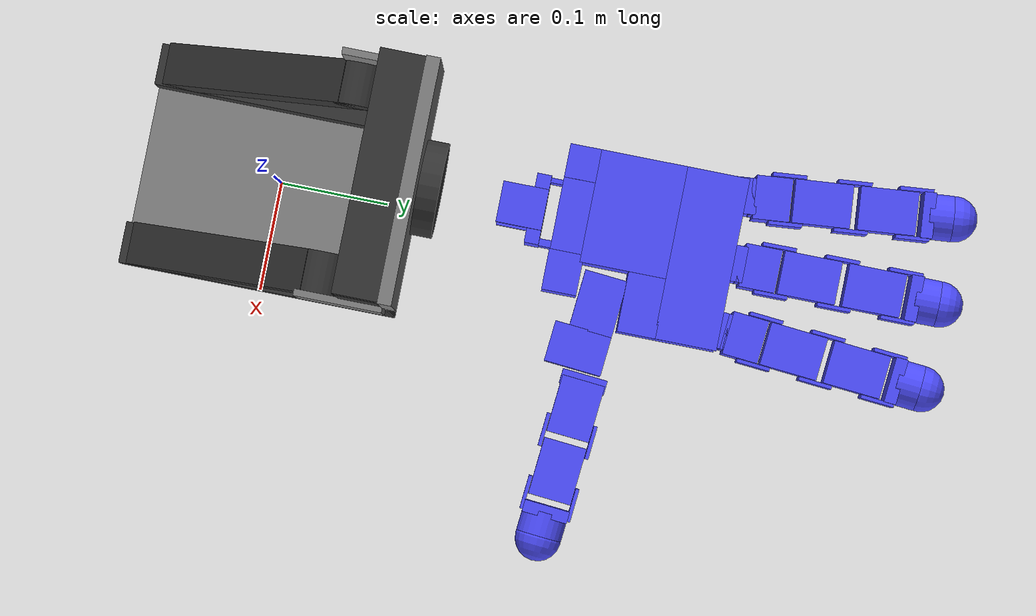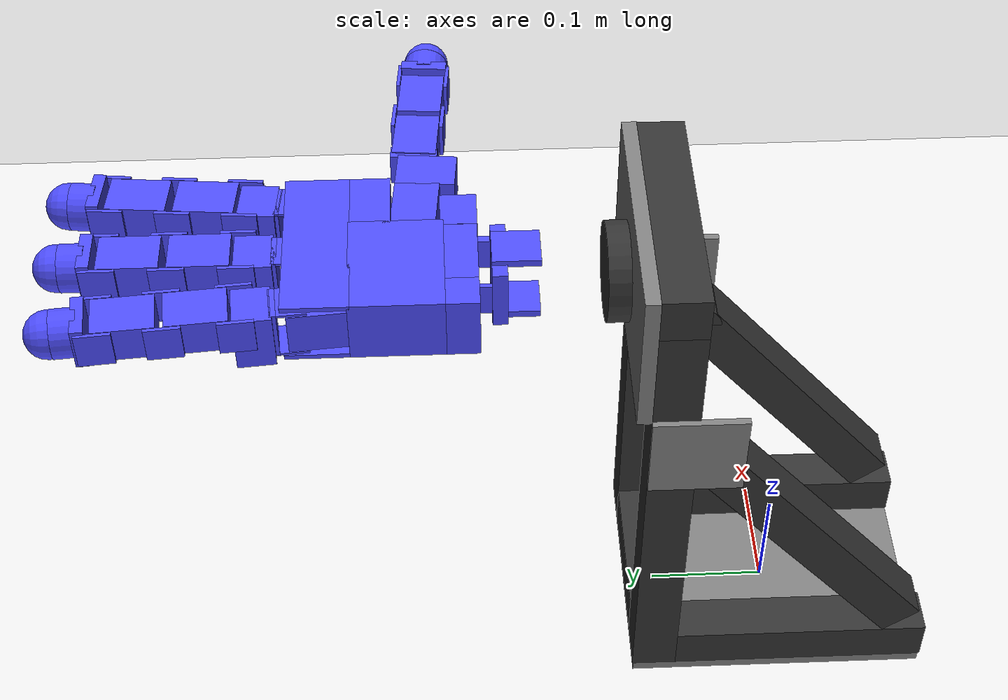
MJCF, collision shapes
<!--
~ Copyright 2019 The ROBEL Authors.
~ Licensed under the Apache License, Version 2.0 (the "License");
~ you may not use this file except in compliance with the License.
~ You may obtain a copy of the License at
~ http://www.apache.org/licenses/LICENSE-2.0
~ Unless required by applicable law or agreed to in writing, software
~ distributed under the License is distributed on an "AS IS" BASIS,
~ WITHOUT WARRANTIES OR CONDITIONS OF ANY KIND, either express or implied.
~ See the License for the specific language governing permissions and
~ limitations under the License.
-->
<?xml version="1.0"?>
<mujoco model="dHand">
  <include file="assets/dhand_dependencies.xml"/>
  <include file="../scenes/basic_scene.xml"/>
  <worldbody>
    <body name="handmount">
      <include file="assets/dhand_chain.xml"/>
    </body>
  </worldbody>
</mujoco>

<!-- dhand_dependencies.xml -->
<mujocoinclude>
  <compiler angle="radian" inertiafromgeom="auto" inertiagrouprange="4 5"/>
  <asset>
    <material name="visual_black" rgba=".2 .2 .2 1" shininess="0.8" specular=".5"/>
    <material name="visual_blue" rgba="0.1 0.4 0.9 1" shininess="0.5" specular=".5"/>
    <material name="visual_white" rgba="1 1 1 1" shininess="0.2" specular=".2"/>
    <material name="visual_chrome" rgba=".5 .5 .5 1" shininess="1" specular=".5" reflectance="1"/>
    <material name="collision_blue" rgba="0.3 0.3 1.0 0.5" shininess="0" specular="0"/>
  </asset>
  <default>
    <default class="dHand">
      <joint armature="0.001" damping="1" limited="true"/>
      <position ctrllimited="true" ctrlrange="0 1.57"/>
      <geom conaffinity="0" contype="0" group="1" material="visual_black" type="mesh"/>
      <site group="3"/>
      <default class="phys_metal">
        <geom conaffinity="1" contype="1" condim="4" margin="0.001" group="4" rgba="0.3 0.3 1.0 0.5"/>
      </default>
      <default class="ADB">
        <joint range="-.3 .3"/>
        <position kp="5" ctrlrange="-.3 .3"/>
      </default>
      <default class="MCP">
        <joint range="-.2 1.57"/>
        <position kp="5" ctrlrange="-.2 1.57"/>
      </default>
      <default class="PIP">
        <joint range="-.2 1.57"/>
        <position kp="5" ctrlrange="-.2 1.57"/>
      </default>
      <default class="DIP">
        <joint range="-.2 1.57"/>
        <position kp="5" ctrlrange="-.2 1.57"/>
      </default>
      <default class="WR">
        <joint damping="100" frictionloss="1"/>
        <position kp="1600" ctrlrange="-.2 1.57"/>
      </default>
    </default>
  </default>
  <asset>
    <mesh file="../dhand/meshes/bracket1.stl" name="bracket1"/>
    <mesh file="../dhand/meshes/bracket2.stl" name="bracket2"/>
    <mesh file="../dhand/meshes/finger.stl" name="finger"/>
    <mesh file="../dhand/meshes/H-540.stl" name="H-540"/>
    <mesh file="../dhand/meshes/knuckle.stl" name="knuckle"/>
    <mesh file="../dhand/meshes/motor.stl" name="motor"/>
    <mesh file="../dhand/meshes/PalmInterior.stl" name="PalmInterior"/>
    <mesh file="../dhand/meshes/Palmplate.stl" name="Palmplate"/>
    <mesh file="../dhand/meshes/thumb_bracket.stl" name="thumb_bracket"/>
    <mesh file="../dhand/meshes/wristbracket1.stl" name="wristbracket1"/>
    <mesh file="../dhand/meshes/wristbracket2.stl" name="wristbracket2"/>
    <mesh file="../dhand/meshes/wristmount.stl" name="wristmount"/>
  </asset>
  <actuator>
    <position joint="WR_ADB" class="WR" name="WR_ADB" ctrlrange="-0.436 0.436"/>
    <position joint="WR_UD" class="WR" name="WR_UD" ctrlrange="-0.436 0.436"/>
    <position joint="FF_ADB" name="FF_ADB" class="ADB"/>
    <position joint="FF_MCP" name="FF_MCP" class="MCP"/>
    <position joint="FF_PIP" name="FF_PIP" class="PIP"/>
    <position joint="FF_DIP" name="FF_DIP" class="DIP"/>
    <position joint="MF_ADB" name="MF_ADB" class="ADB"/>
    <position joint="MF_MCP" name="MF_MCP" class="MCP"/>
    <position joint="MF_PIP" name="MF_PIP" class="PIP"/>
    <position joint="MF_DIP" name="MF_DIP" class="DIP"/>
    <position joint="PF_ADB" name="PF_ADB" class="ADB"/>
    <position joint="PF_MCP" name="PF_MCP" class="MCP"/>
    <position joint="PF_PIP" name="PF_PIP" class="PIP"/>
    <position joint="PF_DIP" name="PF_DIP" class="DIP"/>
    <position joint="TF_MCP" name="TF_MCP" class="MCP"/>
    <position joint="TF_ADB" name="TF_ADB" class="ADB" ctrlrange="-2.57 .57"/>
    <position joint="TF_PIP" name="TF_PIP" class="PIP"/>
    <position joint="TF_DIP" name="TF_DIP" class="DIP"/>
  </actuator>
</mujocoinclude>

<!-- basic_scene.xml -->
<mujocoinclude>
  <asset>
    <texture name="skybox" type="skybox" builtin="gradient" rgb1=".08 .09 .10" rgb2="0 0 0" width="800" height="800" mark="random" markrgb=".8 .8 .8"/>
    <texture name="texplane" type="2d" height="1" width="1" file="textures/white_marble_tile2.png"/>
    <material name="MatPlane" reflectance="0.05" texture="texplane" texrepeat="4 4" texuniform="true"/>
  </asset>
  <visual>
    <map fogstart="1.5" fogend="5" force="0.1" znear="0.1"/>
    <quality shadowsize="4096" offsamples="4"/>
  </visual>
  <worldbody>
    <light directional="true" diffuse=".3 .3 .3" specular="0.3 0.3 0.3" pos="-1 -1 1" dir="1 1 -1"/>
    <light directional="true" diffuse=".3 .3 .3" specular="0.3 0.3 0.3" pos="1 -1 1" dir="-1 1 -1"/>
    <light directional="true" diffuse=".3 .3 .3" specular="0.3 0.3 0.3" pos="0 1 1" dir="0 -1 -1"/>
    <geom name="floor" pos="0 0 0" size="5 5 .1" conaffinity="1" contype="1" type="plane" material="MatPlane" condim="3"/>
    <site name="xaxis" pos=".5 0 0" size=".005 .5" type="capsule" rgba="1 0 0 .25" euler="0 1.57 0" group="3"/>
    <site name="yaxis" pos="0 .5 0" size=".005 .5" type="capsule" rgba="0 1 0 .25" euler="1.57 0 0" group="3"/>
  </worldbody>
</mujocoinclude>

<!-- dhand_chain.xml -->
<mujocoinclude>
  <!-- STAND -->
  <body childclass="dHand" name="dHand-mount" euler="0 0 1.57">
    <geom material="visual_chrome" pos="0.09 -0.104 0.293" size="0.038 0.003 0.038" type="box"/>
    <geom material="visual_chrome" pos="0.09 0.104 0.293" size="0.038 0.003 0.038" type="box"/>
    <geom material="visual_chrome" pos="0.134 0 0.394" size="0.006 0.103 0.064" type="box"/>
    <geom material="visual_chrome" pos="0 0 0.005" size="0.127 0.101 0.005" type="box"/>
    <geom pos="-0.019 -0.083 0.029" size="0.109 0.019 0.019" type="box"/>
    <geom pos="0.109 0 0.029" size="0.019 0.064 0.019" type="box"/>
    <geom euler="0 0.698 0" pos="-0.018 -0.083 0.163" size="0.019 0.019 0.134" type="box"/>
    <geom euler="1.57 0 0" pos="0.068 -0.083 0.265" size="0.019 0.019" type="cylinder"/>
    <geom euler="1.57 0 0" pos="0.068 0.083 0.265" size="0.019 0.019" type="cylinder"/>
    <geom euler="0 0.698 0" pos="-0.018 0.083 0.163" size="0.019 0.019 0.134" type="box"/>
    <geom pos="-0.019 0.083 0.029" size="0.109 0.019 0.019" type="box"/>
    <geom pos="0.109 -0.083 0.215" size="0.019 0.019 0.205" type="box"/>
    <geom pos="0.109 0.083 0.215" size="0.019 0.019 0.205" type="box"/>
    <geom pos="0.109 0 0.439" size="0.019 0.102 0.019" type="box"/>
    <!-- WRIST BASE ROTATE 1 -->
    <body euler="-1.57 1.57 0" name="wrist1" pos="0.16 0 0.394">
      <geom euler="1.57 0 1.57" mesh="H-540" pos="0 0 0.037"/>
      <geom material="visual_chrome" mesh="wristmount" pos="0 0 0.026"/>
      <geom pos="0 0 -0.01" size="0.04 0.009" type="cylinder"/>
      <!-- WRIST AD-AB -->
      <body name="wrist" pos="0 0 0.052">
        <joint axis="0 1 0" name="WR_ADB" range="-0.436 0.436" class="WR"/>
        <geom material="visual_chrome" euler="-1.57 0 -1.57" mesh="wristbracket1" pos="0 0.024 0.016"/>
        <geom material="visual_chrome" euler="1.57 0 1.57" mesh="wristbracket1" pos="0 -0.024 0.016"/>
        <geom material="visual_chrome" mesh="wristbracket2" pos="0 0 0.043"/>
        <geom class="phys_metal" pos="0 0.027 0.016" size="0.017 0.003 0.019" type="box" mass=".01"/>
        <geom class="phys_metal" pos="0 -0.027 0.016" size="0.017 0.003 0.019" type="box" mass=".01"/>
        <geom class="phys_metal" pos="0 0 0.029" size="0.029 0.026 0.006" type="box" mass=".053"/>
        <geom class="phys_metal" pos="-0.026 0 0.049" size="0.002 0.014 0.014" type="box" mass=".03"/>
        <geom class="phys_metal" pos="0.026 0 0.049" size="0.003 0.014 0.014" type="box" mass=".03"/>
        <!-- WRIST Up-Down -->
        <body name="palm" pos="0 0 0.06">
          <joint axis="1 0 0" name="WR_UD" range="-0.436 0.436" class="WR"/>
          <geom euler="3.14 1.57 0" mesh="H-540" pos="0 0 0.015"/>
          <geom euler="1.57 0 1.57" mesh="motor" pos="0.012 0 0.112"/>
          <geom euler="1.57 0 1.66" mesh="motor" pos="-0.042 0 0.111"/>
          <geom euler="1.57 0 1.484" mesh="motor" pos="0.066 0 0.111"/>
          <geom material="visual_white" euler="1.57 0 1.57" mesh="PalmInterior" pos="0.011 0 0.053"/>
          <geom euler="1.57 0 1.57" mesh="Palmplate" pos="0.013 0.025 0.061" material="visual_chrome"/>
          <geom euler="1.57 0 1.57" mesh="Palmplate" pos="0.013 -0.025 0.061"/>
          <geom class="phys_metal" pos="-0.011 0 0.048" size="0.047 0.027 0.037" type="box" mass=".300"/>
          <geom class="phys_metal" pos="-0.044 0 -.002" size="0.014 0.027 0.013" type="box" mass=".150"/>
          <geom class="phys_metal" pos="0.012 0 0.109" size="0.015 0.017 0.024" type="box" mass=".086"/>
          <geom class="phys_metal" euler="0 0.087 0" pos="0.066 0 0.108" size="0.015 0.018 0.024" type="box" mass=".086"/>
          <geom class="phys_metal" euler="0 -0.087 0" pos="-0.042 0 0.108" size="0.015 0.018 0.024" type="box" mass=".086"/>
          <geom class="phys_metal" pos="0.06 0 0.068" size="0.026 0.027 0.016" type="box" mass=".150"/>
          <geom class="phys_metal" pos="0 -0.0248 -.002" size="0.03 0.002 0.013" type="box" mass=".30"/>
          <geom class="phys_metal" pos="0 0.0248 -.002" size="0.03 0.002 0.013" type="box" mass=".30"/>
          <geom class="phys_metal" pos="0.014 -0.025 0.109" size="0.072 0.002 0.026" type="box" mass=".50"/>
          <geom class="phys_metal" pos="0.014 0.025 0.109" size="0.072 0.002 0.026" type="box" mass=".50"/>
          <geom class="phys_metal" pos="0.047 0 -.001" size="0.017 0.027 0.0145" type="box" mass=".79"/>
          <site name="grasp" pos="0 -.125 .1" type="sphere" size="0.020"/>
          <!-- INDEX/FIRST FINGER -->
          <body euler="0 0.087 0" name="FF_metacarpel" pos="0.067 0 0.12">
            <joint axis="0 1 0" name="FF_ADB" class="ADB"/>
            <geom euler="-1.57 3.14 -1.57" mesh="knuckle"/>
            <geom euler="1.57 -1.57 0" mesh="motor" pos="0 0 0.037"/>
            <geom class="phys_metal" pos="0 0 0.021" size="0.015 0.021 0.002" type="box" mass=".003"/>
            <geom class="phys_metal" pos="0 0.02 0.01" size="0.015 0.001 0.014" type="box" mass=".001"/>
            <geom class="phys_metal" pos="0 -0.02 0.01" size="0.015 0.001 0.014" type="box" mass=".001"/>
            <geom class="phys_metal" pos="0 0.003 0.037" size="0.018 0.024 0.015" type="box" mass=".086"/>
            <body name="FF_proximal" pos="0 -0.009 0.037">
              <joint axis="1 0 0" name="FF_MCP" class="MCP"/>
              <geom euler="0 -1.57 0" mesh="bracket2" pos="-0.018 0 0.012"/>
              <geom euler="0 1.57 3.14" mesh="bracket2" pos="0.018 0 0.012"/>
              <geom euler="0 -1.57 0" mesh="motor" pos="0 0 0.0445"/>
              <geom class="phys_metal" pos="0.02 0 0.012" size="0.0015 0.015 0.014" type="box" mass=".003"/>
              <geom class="phys_metal" pos="-0.02 0 0.012" size="0.0015 0.015 0.014" type="box" mass=".003"/>
              <geom class="phys_metal" pos="0 0 0.041" size="0.018 0.015 0.024" type="box" mass=".086"/>
              <body name="FF_middle" pos="0 0 0.054">
                <joint axis="1 0 0" name="FF_PIP" class="PIP"/>
                <geom euler="0 1.57 3.14" mesh="bracket2" pos="0.018 0 0.011"/>
                <geom euler="0 -1.57 0" mesh="bracket2" pos="-0.018 0 0.011"/>
                <geom euler="0 -1.57 0" mesh="motor" pos="0 0 0.0436"/>
                <geom class="phys_metal" pos="0.02 0 0.011" size="0.0015 0.015 0.014" type="box" mass=".003"/>
                <geom class="phys_metal" pos="-0.02 0 0.011" size="0.0015 0.015 0.014" type="box" mass=".003"/>
                <geom class="phys_metal" pos="0 0 0.041" size="0.018 0.015 0.024" type="box" mass=".086"/>
                <body name="FF_distal" pos="0 0 0.052">
                  <joint axis="1 0 0" name="FF_DIP" class="DIP"/>
                  <geom euler="0 -1.57 0" mesh="bracket2" pos="-0.018 0 0.012"/>
                  <geom euler="0 1.57 3.14" mesh="bracket2" pos="0.018 0 0.012"/>
                  <geom material="visual_blue" euler="1.57 0 1.57" mesh="finger" pos="0 0 0.04"/>
                  <geom class="phys_metal" pos="-0.02 0 0.012" size="0.0015 0.015 0.014" type="box" mass=".003"/>
                  <geom class="phys_metal" pos="0.02 0 0.012" size="0.0015 0.015 0.014" type="box" mass=".003"/>
                  <geom class="phys_metal" pos="0 0 0.045" size="0.019" type="sphere" mass=".01"/>
                  <geom class="phys_metal" pos="0 0 0.033" size="0.019 .01" type="cylinder" mass=".007"/>
                  <geom class="phys_metal" pos="0 0 0.022" size="0.019 .018 .005" type="box" mass=".004"/>
                  <site name="FFtip" type="sphere" pos="0 0 0.045" size="0.01" rgba="1 .3 .3 1"/>
                </body>
              </body>
            </body>
          </body>
          <!-- MIDDLE FINGER -->
          <body name="MF_metacarpel" pos="0.012 0 0.121">
            <joint axis="0 1 0" name="MF_ADB" class="ADB"/>
            <geom euler="-1.57 3.14 -1.57" mesh="knuckle"/>
            <geom euler="1.57 -1.57 0" mesh="motor" pos="0 0 0.037"/>
            <geom class="phys_metal" pos="0 0 0.021" size="0.015 0.021 0.002" type="box" mass=".003"/>
            <geom class="phys_metal" pos="0 0.02 0.01" size="0.015 0.001 0.014" type="box" mass=".001"/>
            <geom class="phys_metal" pos="0 -0.02 0.01" size="0.015 0.001 0.014" type="box" mass=".001"/>
            <geom class="phys_metal" pos="0 0.003 0.037" size="0.018 0.024 0.015" type="box" mass=".086"/>
            <body name="MF_proximal" pos="0 -0.009 0.037">
              <joint axis="1 0 0" name="MF_MCP" class="MCP"/>
              <geom euler="0 -1.57 0" mesh="bracket2" pos="-0.018 0 0.012"/>
              <geom euler="0 1.57 3.14" mesh="bracket2" pos="0.018 0 0.012"/>
              <geom euler="0 -1.57 0" mesh="motor" pos="0 0 0.0445"/>
              <geom class="phys_metal" pos="0.02 0 0.012" size="0.0015 0.015 0.014" type="box" mass=".003"/>
              <geom class="phys_metal" pos="-0.02 0 0.012" size="0.0015 0.015 0.014" type="box" mass=".003"/>
              <geom class="phys_metal" pos="0 0 0.041" size="0.018 0.015 0.024" type="box" mass=".086"/>
              <body name="MF_middle" pos="0 0 0.054">
                <joint axis="1 0 0" name="MF_PIP" class="PIP"/>
                <geom euler="0 1.57 3.14" mesh="bracket2" pos="0.018 0 0.011"/>
                <geom euler="0 -1.57 0" mesh="bracket2" pos="-0.018 0 0.011"/>
                <geom euler="0 -1.57 0" mesh="motor" pos="0 0 0.0436"/>
                <geom class="phys_metal" pos="0.02 0 0.011" size="0.0015 0.015 0.014" type="box" mass=".003"/>
                <geom class="phys_metal" pos="-0.02 0 0.011" size="0.0015 0.015 0.014" type="box" mass=".003"/>
                <geom class="phys_metal" pos="0 0 0.041" size="0.018 0.015 0.024" type="box" mass=".086"/>
                <body name="MF_distal" pos="0 0 0.052">
                  <joint axis="1 0 0" name="MF_DIP" class="DIP"/>
                  <geom euler="0 -1.57 0" mesh="bracket2" pos="-0.018 0 0.012"/>
                  <geom euler="0 1.57 3.14" mesh="bracket2" pos="0.018 0 0.012"/>
                  <geom material="visual_blue" euler="1.57 0 1.57" mesh="finger" pos="0 0 0.04"/>
                  <geom class="phys_metal" pos="-0.02 0 0.012" size="0.0015 0.015 0.014" type="box" mass=".003"/>
                  <geom class="phys_metal" pos="0.02 0 0.012" size="0.0015 0.015 0.014" type="box" mass=".003"/>
                  <geom class="phys_metal" pos="0 0 0.045" size="0.019" type="sphere" mass=".01"/>
                  <geom class="phys_metal" pos="0 0 0.033" size="0.019 .01" type="cylinder" mass=".007"/>
                  <geom class="phys_metal" pos="0 0 0.022" size="0.019 .018 .005" type="box" mass=".004"/>
                  <site name="MFtip" type="sphere" pos="0 0 0.045" size="0.01" rgba=".3 1 .3 1"/>
                </body>
              </body>
            </body>
          </body>
          <!-- PINKY FINGER -->
          <body euler="0 -0.087 0" name="PF_metacarpel" pos="-0.043 0 0.12">
            <joint axis="0 1 0" name="PF_ADB" class="ADB"/>
            <geom euler="-1.57 3.14 -1.57" mesh="knuckle"/>
            <geom euler="1.57 -1.57 0" mesh="motor" pos="0 0 0.037"/>
            <geom class="phys_metal" pos="0 0 0.021" size="0.015 0.021 0.002" type="box" mass=".003"/>
            <geom class="phys_metal" pos="0 0.02 0.01" size="0.015 0.001 0.014" type="box" mass=".001"/>
            <geom class="phys_metal" pos="0 -0.02 0.01" size="0.015 0.001 0.014" type="box" mass=".001"/>
            <geom class="phys_metal" pos="0 0.003 0.037" size="0.018 0.024 0.015" type="box" mass=".086"/>
            <body name="PF_proximal" pos="0 -0.009 0.037">
              <joint axis="1 0 0" name="PF_MCP" class="MCP"/>
              <geom euler="0 -1.57 0" mesh="bracket2" pos="-0.018 0 0.012"/>
              <geom euler="0 1.57 3.14" mesh="bracket2" pos="0.018 0 0.012"/>
              <geom euler="0 -1.57 0" mesh="motor" pos="0 0 0.0445"/>
              <geom class="phys_metal" pos="0.02 0 0.012" size="0.0015 0.015 0.014" type="box" mass=".003"/>
              <geom class="phys_metal" pos="-0.02 0 0.012" size="0.0015 0.015 0.014" type="box" mass=".003"/>
              <geom class="phys_metal" pos="0 0 0.041" size="0.018 0.015 0.024" type="box" mass=".086"/>
              <body name="PF_middle" pos="0 0 0.054">
                <joint axis="1 0 0" name="PF_PIP" class="PIP"/>
                <geom euler="0 1.57 3.14" mesh="bracket2" pos="0.018 0 0.011"/>
                <geom euler="0 -1.57 0" mesh="bracket2" pos="-0.018 0 0.011"/>
                <geom euler="0 -1.57 0" mesh="motor" pos="0 0 0.0436"/>
                <geom class="phys_metal" pos="0.02 0 0.012" size="0.0015 0.015 0.014" type="box" mass=".003"/>
                <geom class="phys_metal" pos="-0.02 0 0.012" size="0.0015 0.015 0.014" type="box" mass=".003"/>
                <geom class="phys_metal" pos="0 0 0.041" size="0.018 0.015 0.024" type="box" mass=".086"/>
                <body name="PF_distal" pos="0 0 0.052">
                  <joint axis="1 0 0" name="PF_DIP" class="DIP"/>
                  <geom euler="0 -1.57 0" mesh="bracket2" pos="-0.018 0 0.012"/>
                  <geom euler="0 1.57 3.14" mesh="bracket2" pos="0.018 0 0.012"/>
                  <geom material="visual_blue" euler="1.57 0 1.57" mesh="finger" pos="0 0 0.04"/>
                  <geom class="phys_metal" pos="-0.02 0 0.011" size="0.0015 0.015 0.014" type="box" mass=".003"/>
                  <geom class="phys_metal" pos="0.02 0 0.011" size="0.0015 0.015 0.014" type="box" mass=".003"/>
                  <geom class="phys_metal" pos="0 0 0.045" size="0.019" type="sphere" mass=".01"/>
                  <geom class="phys_metal" pos="0 0 0.033" size="0.019 .01" type="cylinder" mass=".007"/>
                  <geom class="phys_metal" pos="0 0 0.022" size="0.019 .018 .005" type="box" mass=".004"/>
                  <site name="PFtip" type="sphere" pos="0 0 0.045" size="0.01" rgba=".3 .3 1 1"/>
                </body>
              </body>
            </body>
          </body>
          <!-- THUMB -->
          <body euler="0 1.658 0" name="TF" pos="0.055 0 0.04">
            <joint axis="1 0 0" name="TF_MCP" class="MCP"/>
            <geom euler="0 0 3.14" mesh="motor" pos="0.009 0 0.052"/>
            <geom euler="-3.14 -1.57 0" mesh="motor" pos="0.006 0 0.009"/>
            <geom material="visual_chrome" euler="1.57 0 1.57" mesh="thumb_bracket" pos="0.015 0.016 0.031"/>
            <geom material="visual_chrome" euler="1.57 0 1.57" mesh="thumb_bracket" pos="0.015 -0.016 0.031"/>
            <geom class="phys_metal" pos="0.006 0 0.012" size="0.018 0.018 0.024" type="box" mass=".092"/>
            <geom class="phys_metal" pos="0.012 0 0.052" size="0.024 0.018 0.017" type="box" mass=".092"/>
            <body name="TF_metacarpel" pos="0 0 0.072">
              <joint axis="0 0 1" name="TF_ADB" range="-2.57 .57"/>
              <geom euler="1.57 0 1.57" mesh="bracket1" pos="0 0 0.0015"/>
              <geom euler="0 -1.57 0" mesh="motor" pos="0 0 0.031"/>
              <geom class="phys_metal" pos="0 0 0.028" size="0.018 0.015 0.024" type="box"/>
              <geom class="phys_metal" pos="0 0 0.005" size="0.019 0.014 0.006" type="box"/>
              <body name="TF_middle" pos="0 0 0.0405">
                <joint axis="1 0 0" name="TF_PIP" class="PIP"/>
                <geom euler="0 -1.57 0" mesh="bracket2" pos="-0.018 0 0.011"/>
                <geom euler="3.14 1.57 0" mesh="bracket2" pos="0.017 0 0.011"/>
                <geom euler="0 -1.57 0" mesh="motor" pos="0 0 0.044"/>
                <geom class="phys_metal" pos="-0.02 0 0.011" size="0.0015 0.015 0.014" type="box" mass=".003"/>
                <geom class="phys_metal" pos="0.02 0 0.011" size="0.0015 0.015 0.014" type="box" mass=".003"/>
                <geom class="phys_metal" pos="0 0 0.041" size="0.018 0.015 0.024" type="box" mass=".086"/>
                <body name="TF_distal" pos="0 0 0.0535">
                  <joint axis="1 0 0" name="TF_DIP" class="DIP"/>
                  <geom euler="3.14 1.57 0" mesh="bracket2" pos="0.017 0 0.011"/>
                  <geom euler="0 -1.57 0" mesh="bracket2" pos="-0.018 0 0.011"/>
                  <geom material="visual_blue" euler="1.57 0 1.57" mesh="finger" pos="0 0 0.04"/>
                  <geom class="phys_metal" pos="-0.02 0 0.011" size="0.0015 0.015 0.014" type="box" mass=".003"/>
                  <geom class="phys_metal" pos="0.02 0 0.011" size="0.0015 0.015 0.014" type="box" mass=".003"/>
                  <geom class="phys_metal" pos="0 0 0.045" size="0.019" type="sphere" mass=".01"/>
                  <geom class="phys_metal" pos="0 0 0.033" size="0.019 .01" type="cylinder" mass=".007"/>
                  <geom class="phys_metal" pos="0 0 0.022" size="0.019 .018 .005" type="box" mass=".004"/>
                  <site name="TFtip" type="sphere" pos="0 0 0.045" size="0.01" rgba="1 1 .3 1"/>
                </body>
              </body>
            </body>
          </body>
        </body>
      </body>
    </body>
  </body>
</mujocoinclude>
